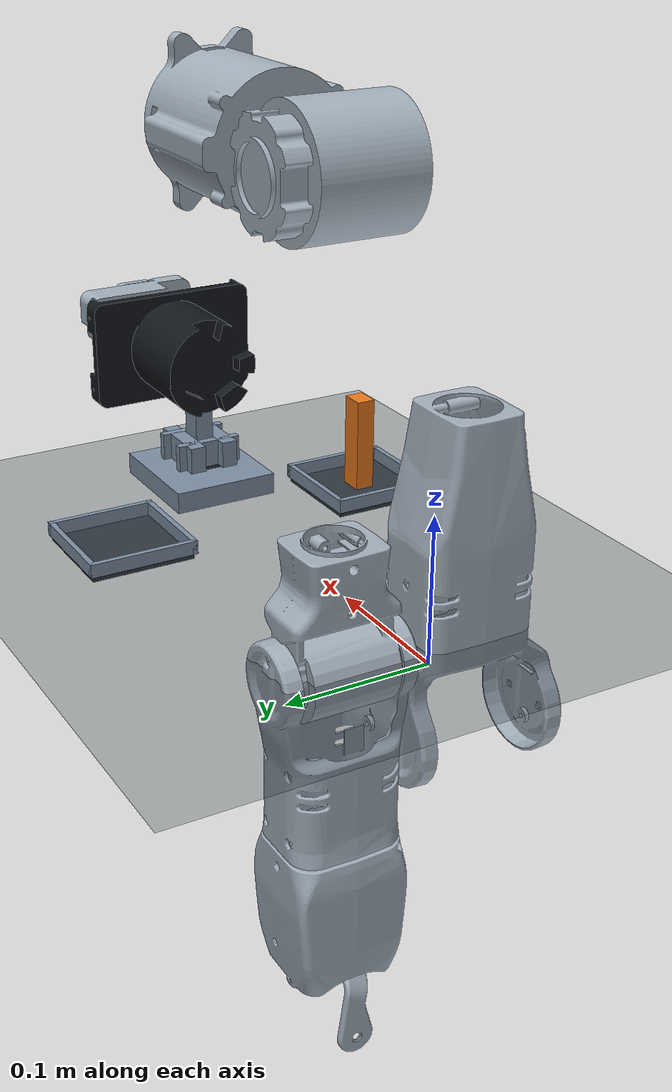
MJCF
<mujoco model="YAM two-stock machine tending with powered contact vise">
  <compiler angle="radian" />
  <asset>
    <mesh name="base" content_type="model/stl" file="../../assets/robots/yam/v1/assets/base.stl" />
    <mesh name="gripper" content_type="model/stl" file="../../assets/robots/yam/v1/assets/gripper.stl" />
    <mesh name="link1" content_type="model/stl" file="../../assets/robots/yam/v1/assets/link1.stl" />
    <mesh name="link2" content_type="model/stl" file="../../assets/robots/yam/v1/assets/link2.stl" />
    <mesh name="link3" content_type="model/stl" file="../../assets/robots/yam/v1/assets/link3.stl" />
    <mesh name="link4" content_type="model/stl" file="../../assets/robots/yam/v1/assets/link4.stl" />
    <mesh name="link5" content_type="model/stl" file="../../assets/robots/yam/v1/assets/link5.stl" />
    <mesh name="tip_left" content_type="model/stl" file="../../assets/robots/yam/v1/assets/tip_left.stl" />
    <mesh name="tip_right" content_type="model/stl" file="../../assets/robots/yam/v1/assets/tip_right.stl" />
    <mesh name="finger_left_0" file="../../assets/robots/yam/collision/tip_left_00.stl" />
    <mesh name="finger_left_1" file="../../assets/robots/yam/collision/tip_left_01.stl" />
    <mesh name="finger_left_2" file="../../assets/robots/yam/collision/tip_left_02.stl" />
    <mesh name="finger_left_3" file="../../assets/robots/yam/collision/tip_left_03.stl" />
    <mesh name="finger_left_4" file="../../assets/robots/yam/collision/tip_left_04.stl" />
    <mesh name="finger_left_5" file="../../assets/robots/yam/collision/tip_left_05.stl" />
    <mesh name="finger_left_6" file="../../assets/robots/yam/collision/tip_left_06.stl" />
    <mesh name="finger_left_7" file="../../assets/robots/yam/collision/tip_left_07.stl" />
    <mesh name="finger_left_8" file="../../assets/robots/yam/collision/tip_left_08.stl" />
    <mesh name="finger_left_9" file="../../assets/robots/yam/collision/tip_left_09.stl" />
    <mesh name="finger_left_10" file="../../assets/robots/yam/collision/tip_left_10.stl" />
    <mesh name="finger_left_11" file="../../assets/robots/yam/collision/tip_left_11.stl" />
    <mesh name="finger_left_12" file="../../assets/robots/yam/collision/tip_left_12.stl" />
    <mesh name="finger_left_13" file="../../assets/robots/yam/collision/tip_left_13.stl" />
    <mesh name="finger_left_14" file="../../assets/robots/yam/collision/tip_left_14.stl" />
    <mesh name="finger_left_15" file="../../assets/robots/yam/collision/tip_left_15.stl" />
    <mesh name="finger_left_16" file="../../assets/robots/yam/collision/tip_left_16.stl" />
    <mesh name="finger_left_17" file="../../assets/robots/yam/collision/tip_left_17.stl" />
    <mesh name="finger_left_18" file="../../assets/robots/yam/collision/tip_left_18.stl" />
    <mesh name="finger_left_19" file="../../assets/robots/yam/collision/tip_left_19.stl" />
    <mesh name="finger_left_20" file="../../assets/robots/yam/collision/tip_left_20.stl" />
    <mesh name="finger_left_21" file="../../assets/robots/yam/collision/tip_left_21.stl" />
    <mesh name="finger_left_22" file="../../assets/robots/yam/collision/tip_left_22.stl" />
    <mesh name="finger_left_23" file="../../assets/robots/yam/collision/tip_left_23.stl" />
    <mesh name="finger_right_0" file="../../assets/robots/yam/collision/tip_right_00.stl" />
    <mesh name="finger_right_1" file="../../assets/robots/yam/collision/tip_right_01.stl" />
    <mesh name="finger_right_2" file="../../assets/robots/yam/collision/tip_right_02.stl" />
    <mesh name="finger_right_3" file="../../assets/robots/yam/collision/tip_right_03.stl" />
    <mesh name="finger_right_4" file="../../assets/robots/yam/collision/tip_right_04.stl" />
    <mesh name="finger_right_5" file="../../assets/robots/yam/collision/tip_right_05.stl" />
    <mesh name="finger_right_6" file="../../assets/robots/yam/collision/tip_right_06.stl" />
    <mesh name="finger_right_7" file="../../assets/robots/yam/collision/tip_right_07.stl" />
    <mesh name="finger_right_8" file="../../assets/robots/yam/collision/tip_right_08.stl" />
    <mesh name="finger_right_9" file="../../assets/robots/yam/collision/tip_right_09.stl" />
    <mesh name="finger_right_10" file="../../assets/robots/yam/collision/tip_right_10.stl" />
    <mesh name="finger_right_11" file="../../assets/robots/yam/collision/tip_right_11.stl" />
    <mesh name="finger_right_12" file="../../assets/robots/yam/collision/tip_right_12.stl" />
    <mesh name="finger_right_13" file="../../assets/robots/yam/collision/tip_right_13.stl" />
    <mesh name="finger_right_14" file="../../assets/robots/yam/collision/tip_right_14.stl" />
    <mesh name="finger_right_15" file="../../assets/robots/yam/collision/tip_right_15.stl" />
    <mesh name="finger_right_16" file="../../assets/robots/yam/collision/tip_right_16.stl" />
    <mesh name="finger_right_17" file="../../assets/robots/yam/collision/tip_right_17.stl" />
    <mesh name="finger_right_18" file="../../assets/robots/yam/collision/tip_right_18.stl" />
    <mesh name="finger_right_19" file="../../assets/robots/yam/collision/tip_right_19.stl" />
    <mesh name="finger_right_20" file="../../assets/robots/yam/collision/tip_right_20.stl" />
    <mesh name="finger_right_21" file="../../assets/robots/yam/collision/tip_right_21.stl" />
    <mesh name="finger_right_22" file="../../assets/robots/yam/collision/tip_right_22.stl" />
    <mesh name="finger_right_23" file="../../assets/robots/yam/collision/tip_right_23.stl" />
    <texture name="studio_sky" type="skybox" builtin="gradient" rgb1=".72 .79 .86" rgb2=".94 .96 .98" width="512" height="3072" />
    <material name="studio_arm" rgba=".63 .68 .73 1" specular=".65" shininess=".65" reflectance=".03" />
    <material name="studio_dark" rgba=".07 .085 .105 1" specular=".3" shininess=".35" reflectance="0" />
    <material name="studio_socket" rgba=".48 .55 .63 1" specular=".75" shininess=".7" reflectance=".05" />
    <material name="studio_peg" rgba=".92 .47 .10 1" specular=".55" shininess=".6" reflectance=".02" />
    <material name="studio_bench" rgba=".18 .215 .245 1" specular=".2" shininess=".2" reflectance="0" />
  </asset>
  <worldbody>
    <body name="base">
      <inertial pos="-3.83909e-05 2.40069e-05 0.0247678" quat="0.500738 0.500087 -0.499793 0.499381" mass="0.873654" diaginertia="0.00169404 0.00157059 0.000678306" />
      <geom pos="0.0374957 0.0464006 0.187501" quat="-1.29867e-06 -0.707108 -1.29868e-06 0.707105" type="mesh" contype="2" conaffinity="9" group="0" density="0" mesh="base" name="yam_geom_0" material="studio_arm" />
      <body name="link1" pos="-2.49778e-07 0 0.068" quat="-1.29867e-06 -0.707108 -1.29868e-06 0.707105">
        <inertial pos="-0.0233636 -0.00172503 -0.00727828" quat="0.350044 0.317088 -0.649919 0.595424" mass="0.101218" diaginertia="0.000134913 0.000106251 4.71815e-05" />
        <joint name="joint1" range="-2.61799 3.14159" actuatorfrcrange="-10 10" axis="-1 0 0" damping=".15" armature=".015" />
        <geom pos="-0.119501 -0.0464 -0.0374968" quat="1 0 0 0" type="mesh" contype="2" conaffinity="9" group="0" density="0" mesh="link1" name="yam_geom_1" material="studio_arm" />
        <body name="link2" pos="-0.0455 -0.0339 -0.02" quat="1.32679e-06 0 0 -1">
          <inertial pos="0.000134495 -0.0331253 0.129165" quat="1 0.000113256 1.56201e-05 -8.02079e-05" mass="1.46908" diaginertia="0.0146686 0.014599 0.000800088" />
          <joint name="joint2" range="0 3.66519" actuatorfrcrange="-10 10" axis="0 1 0" damping=".15" armature=".015" />
          <geom pos="-0.0740001 -0.08025 -0.0174977" quat="1 0 0 0" type="mesh" contype="2" conaffinity="9" group="0" density="0" mesh="link2" name="yam_geom_2" material="studio_arm" />
          <body name="link3" pos="4.08431e-07 -0.0688 0.264" quat="1.32679e-06 0 0 -1">
            <inertial pos="-0.0556042 -0.0340514 -0.135083" quat="0.990999 0.00518347 0.0472812 0.125137" mass="0.982553" diaginertia="0.00765198 0.0076296 0.000876442" />
            <joint name="joint3" range="0 3.14159" actuatorfrcrange="-10 10" axis="0 1 0" damping=".15" armature=".015" />
            <geom pos="-0.0740003 -0.0813 -0.281499" type="mesh" contype="2" conaffinity="9" group="0" density="0" mesh="link3" name="yam_geom_3" material="studio_arm" />
            <body name="link4" pos="-0.0600003 -0.0688 -0.244999" quat="1 0 0 0">
              <inertial pos="-0.0550959 0.032726 -0.0575534" quat="0.127536 0.44423 0.0147443 0.886666" mass="0.462165" diaginertia="0.000787888 0.00076643 0.00028779" />
              <joint name="joint4" range="-1.69297 1.5708" actuatorfrcrange="-10 10" axis="0 1 0" damping=".15" armature=".015" />
              <geom pos="-0.0140003 -0.0125 -0.0364989" quat="1 0 0 0" type="mesh" contype="2" conaffinity="9" group="0" density="0" mesh="link4" name="yam_geom_4" material="studio_arm" />
              <body name="link5" pos="-0.0405003 0.0338995 -0.0739989" quat="1 0 0 0">
                <inertial pos="0.0375847 -3.55003e-05 -0.000825911" quat="0.661372 -0.253166 -0.247107 0.661387" mass="0.403307" diaginertia="0.000219794 0.000195686 0.000169647" />
                <joint name="joint5" range="-1.5708 1.5708" actuatorfrcrange="-10 10" axis="1 0 0" damping=".15" armature=".015" />
                <geom pos="0.0265 -0.0463995 0.0375" quat="1 0 0 0" type="mesh" contype="2" conaffinity="9" group="0" density="0" mesh="link5" name="yam_geom_5" material="studio_arm" />
                <body name="gripper" pos="0.0404996 2.39858e-07 -0.0356" quat="1 0 0 0">
                  <inertial pos="-3.57064e-05 0.000249371 -0.0293133" quat="0.667981 0.744113 -0.0043308 0.00882784" mass="0.553219" diaginertia="0.000409687 0.000369758 0.000324415" />
                  <joint name="joint6" range="-2.0944 2.0944" actuatorfrcrange="-10 10" axis="0 0 -1" damping=".15" armature=".015" />
                  <geom pos="-0.014 -0.0463995 0.0731" quat="1 0 0 0" type="mesh" contype="2" conaffinity="9" group="0" density="0" mesh="gripper" name="yam_geom_6" material="studio_dark" />
                  <body name="tip_left" pos="-0.0239931 0.0445119 -0.0566829" quat="1 0 0 0">
                    <inertial pos="0.014584 -0.042586 -0.0228318" quat="0.80517 -0.425818 -0.124987 0.393393" mass="0.069657" diaginertia="6.18569e-05 5.94605e-05 2.79862e-05" />
                    <joint name="joint7" type="slide" range="-0.04695 0" actuatorfrcrange="-30 30" axis="0 1 0" damping="2" armature=".002" />
                    <geom pos="0.00999321 -0.0914614 0.129783" type="mesh" contype="0" conaffinity="0" group="0" density="0" mesh="tip_left" name="yam_geom_7" material="studio_arm" />
                    <geom pos="0.00999321 -0.0914614 0.129783" type="mesh" contype="4" conaffinity="9" group="3" density="0" mesh="finger_left_0" name="finger_left_0" friction="1.2 .005 .0001" material="studio_dark" />
                    <geom pos="0.00999321 -0.0914614 0.129783" type="mesh" contype="4" conaffinity="9" group="3" density="0" mesh="finger_left_1" name="finger_left_1" friction="1.2 .005 .0001" material="studio_dark" />
                    <geom pos="0.00999321 -0.0914614 0.129783" type="mesh" contype="4" conaffinity="9" group="3" density="0" mesh="finger_left_2" name="finger_left_2" friction="1.2 .005 .0001" material="studio_dark" />
                    <geom pos="0.00999321 -0.0914614 0.129783" type="mesh" contype="4" conaffinity="9" group="3" density="0" mesh="finger_left_3" name="finger_left_3" friction="1.2 .005 .0001" material="studio_dark" />
                    <geom pos="0.00999321 -0.0914614 0.129783" type="mesh" contype="4" conaffinity="9" group="3" density="0" mesh="finger_left_4" name="finger_left_4" friction="1.2 .005 .0001" material="studio_dark" />
                    <geom pos="0.00999321 -0.0914614 0.129783" type="mesh" contype="4" conaffinity="9" group="3" density="0" mesh="finger_left_5" name="finger_left_5" friction="1.2 .005 .0001" material="studio_dark" />
                    <geom pos="0.00999321 -0.0914614 0.129783" type="mesh" contype="4" conaffinity="9" group="3" density="0" mesh="finger_left_6" name="finger_left_6" friction="1.2 .005 .0001" material="studio_dark" />
                    <geom pos="0.00999321 -0.0914614 0.129783" type="mesh" contype="4" conaffinity="9" group="3" density="0" mesh="finger_left_7" name="finger_left_7" friction="1.2 .005 .0001" material="studio_dark" />
                    <geom pos="0.00999321 -0.0914614 0.129783" type="mesh" contype="4" conaffinity="9" group="3" density="0" mesh="finger_left_8" name="finger_left_8" friction="1.2 .005 .0001" material="studio_dark" />
                    <geom pos="0.00999321 -0.0914614 0.129783" type="mesh" contype="4" conaffinity="9" group="3" density="0" mesh="finger_left_9" name="finger_left_9" friction="1.2 .005 .0001" material="studio_dark" />
                    <geom pos="0.00999321 -0.0914614 0.129783" type="mesh" contype="4" conaffinity="9" group="3" density="0" mesh="finger_left_10" name="finger_left_10" friction="1.2 .005 .0001" material="studio_dark" />
                    <geom pos="0.00999321 -0.0914614 0.129783" type="mesh" contype="4" conaffinity="9" group="3" density="0" mesh="finger_left_11" name="finger_left_11" friction="1.2 .005 .0001" material="studio_dark" />
                    <geom pos="0.00999321 -0.0914614 0.129783" type="mesh" contype="4" conaffinity="9" group="3" density="0" mesh="finger_left_12" name="finger_left_12" friction="1.2 .005 .0001" material="studio_dark" />
                    <geom pos="0.00999321 -0.0914614 0.129783" type="mesh" contype="4" conaffinity="9" group="3" density="0" mesh="finger_left_13" name="finger_left_13" friction="1.2 .005 .0001" material="studio_dark" />
                    <geom pos="0.00999321 -0.0914614 0.129783" type="mesh" contype="4" conaffinity="9" group="3" density="0" mesh="finger_left_14" name="finger_left_14" friction="1.2 .005 .0001" material="studio_dark" />
                    <geom pos="0.00999321 -0.0914614 0.129783" type="mesh" contype="4" conaffinity="9" group="3" density="0" mesh="finger_left_15" name="finger_left_15" friction="1.2 .005 .0001" material="studio_dark" />
                    <geom pos="0.00999321 -0.0914614 0.129783" type="mesh" contype="4" conaffinity="9" group="3" density="0" mesh="finger_left_16" name="finger_left_16" friction="1.2 .005 .0001" material="studio_dark" />
                    <geom pos="0.00999321 -0.0914614 0.129783" type="mesh" contype="4" conaffinity="9" group="3" density="0" mesh="finger_left_17" name="finger_left_17" friction="1.2 .005 .0001" material="studio_dark" />
                    <geom pos="0.00999321 -0.0914614 0.129783" type="mesh" contype="4" conaffinity="9" group="3" density="0" mesh="finger_left_18" name="finger_left_18" friction="1.2 .005 .0001" material="studio_dark" />
                    <geom pos="0.00999321 -0.0914614 0.129783" type="mesh" contype="4" conaffinity="9" group="3" density="0" mesh="finger_left_19" name="finger_left_19" friction="1.2 .005 .0001" material="studio_dark" />
                    <geom pos="0.00999321 -0.0914614 0.129783" type="mesh" contype="4" conaffinity="9" group="3" density="0" mesh="finger_left_20" name="finger_left_20" friction="1.2 .005 .0001" material="studio_dark" />
                    <geom pos="0.00999321 -0.0914614 0.129783" type="mesh" contype="4" conaffinity="9" group="3" density="0" mesh="finger_left_21" name="finger_left_21" friction="1.2 .005 .0001" material="studio_dark" />
                    <geom pos="0.00999321 -0.0914614 0.129783" type="mesh" contype="4" conaffinity="9" group="3" density="0" mesh="finger_left_22" name="finger_left_22" friction="1.2 .005 .0001" material="studio_dark" />
                    <geom pos="0.00999321 -0.0914614 0.129783" type="mesh" contype="4" conaffinity="9" group="3" density="0" mesh="finger_left_23" name="finger_left_23" friction="1.2 .005 .0001" material="studio_dark" />
                  </body>
                  <body name="tip_right" pos="0.0239931 -0.0445119 -0.0566829" quat="1 0 0 0">
                    <inertial pos="-0.014584 0.042586 -0.0228318" quat="0.80517 0.425818 0.124987 0.393393" mass="0.069657" diaginertia="6.18569e-05 5.94605e-05 2.79862e-05" />
                    <joint name="joint8" type="slide" range="-0.04695 0" actuatorfrcrange="-30 30" axis="0 -1 0" damping="2" armature=".002" />
                    <geom pos="-0.0379932 -0.00133753 0.129783" quat="1 0 0 0" type="mesh" contype="0" conaffinity="0" group="0" density="0" mesh="tip_right" name="yam_geom_8" material="studio_arm" />
                    <geom pos="-0.0379932 -0.00133753 0.129783" quat="1 0 0 0" type="mesh" contype="4" conaffinity="9" group="3" density="0" mesh="finger_right_0" name="finger_right_0" friction="1.2 .005 .0001" material="studio_dark" />
                    <geom pos="-0.0379932 -0.00133753 0.129783" quat="1 0 0 0" type="mesh" contype="4" conaffinity="9" group="3" density="0" mesh="finger_right_1" name="finger_right_1" friction="1.2 .005 .0001" material="studio_dark" />
                    <geom pos="-0.0379932 -0.00133753 0.129783" quat="1 0 0 0" type="mesh" contype="4" conaffinity="9" group="3" density="0" mesh="finger_right_2" name="finger_right_2" friction="1.2 .005 .0001" material="studio_dark" />
                    <geom pos="-0.0379932 -0.00133753 0.129783" quat="1 0 0 0" type="mesh" contype="4" conaffinity="9" group="3" density="0" mesh="finger_right_3" name="finger_right_3" friction="1.2 .005 .0001" material="studio_dark" />
                    <geom pos="-0.0379932 -0.00133753 0.129783" quat="1 0 0 0" type="mesh" contype="4" conaffinity="9" group="3" density="0" mesh="finger_right_4" name="finger_right_4" friction="1.2 .005 .0001" material="studio_dark" />
                    <geom pos="-0.0379932 -0.00133753 0.129783" quat="1 0 0 0" type="mesh" contype="4" conaffinity="9" group="3" density="0" mesh="finger_right_5" name="finger_right_5" friction="1.2 .005 .0001" material="studio_dark" />
                    <geom pos="-0.0379932 -0.00133753 0.129783" quat="1 0 0 0" type="mesh" contype="4" conaffinity="9" group="3" density="0" mesh="finger_right_6" name="finger_right_6" friction="1.2 .005 .0001" material="studio_dark" />
                    <geom pos="-0.0379932 -0.00133753 0.129783" quat="1 0 0 0" type="mesh" contype="4" conaffinity="9" group="3" density="0" mesh="finger_right_7" name="finger_right_7" friction="1.2 .005 .0001" material="studio_dark" />
                    <geom pos="-0.0379932 -0.00133753 0.129783" quat="1 0 0 0" type="mesh" contype="4" conaffinity="9" group="3" density="0" mesh="finger_right_8" name="finger_right_8" friction="1.2 .005 .0001" material="studio_dark" />
                    <geom pos="-0.0379932 -0.00133753 0.129783" quat="1 0 0 0" type="mesh" contype="4" conaffinity="9" group="3" density="0" mesh="finger_right_9" name="finger_right_9" friction="1.2 .005 .0001" material="studio_dark" />
                    <geom pos="-0.0379932 -0.00133753 0.129783" quat="1 0 0 0" type="mesh" contype="4" conaffinity="9" group="3" density="0" mesh="finger_right_10" name="finger_right_10" friction="1.2 .005 .0001" material="studio_dark" />
                    <geom pos="-0.0379932 -0.00133753 0.129783" quat="1 0 0 0" type="mesh" contype="4" conaffinity="9" group="3" density="0" mesh="finger_right_11" name="finger_right_11" friction="1.2 .005 .0001" material="studio_dark" />
                    <geom pos="-0.0379932 -0.00133753 0.129783" quat="1 0 0 0" type="mesh" contype="4" conaffinity="9" group="3" density="0" mesh="finger_right_12" name="finger_right_12" friction="1.2 .005 .0001" material="studio_dark" />
                    <geom pos="-0.0379932 -0.00133753 0.129783" quat="1 0 0 0" type="mesh" contype="4" conaffinity="9" group="3" density="0" mesh="finger_right_13" name="finger_right_13" friction="1.2 .005 .0001" material="studio_dark" />
                    <geom pos="-0.0379932 -0.00133753 0.129783" quat="1 0 0 0" type="mesh" contype="4" conaffinity="9" group="3" density="0" mesh="finger_right_14" name="finger_right_14" friction="1.2 .005 .0001" material="studio_dark" />
                    <geom pos="-0.0379932 -0.00133753 0.129783" quat="1 0 0 0" type="mesh" contype="4" conaffinity="9" group="3" density="0" mesh="finger_right_15" name="finger_right_15" friction="1.2 .005 .0001" material="studio_dark" />
                    <geom pos="-0.0379932 -0.00133753 0.129783" quat="1 0 0 0" type="mesh" contype="4" conaffinity="9" group="3" density="0" mesh="finger_right_16" name="finger_right_16" friction="1.2 .005 .0001" material="studio_dark" />
                    <geom pos="-0.0379932 -0.00133753 0.129783" quat="1 0 0 0" type="mesh" contype="4" conaffinity="9" group="3" density="0" mesh="finger_right_17" name="finger_right_17" friction="1.2 .005 .0001" material="studio_dark" />
                    <geom pos="-0.0379932 -0.00133753 0.129783" quat="1 0 0 0" type="mesh" contype="4" conaffinity="9" group="3" density="0" mesh="finger_right_18" name="finger_right_18" friction="1.2 .005 .0001" material="studio_dark" />
                    <geom pos="-0.0379932 -0.00133753 0.129783" quat="1 0 0 0" type="mesh" contype="4" conaffinity="9" group="3" density="0" mesh="finger_right_19" name="finger_right_19" friction="1.2 .005 .0001" material="studio_dark" />
                    <geom pos="-0.0379932 -0.00133753 0.129783" quat="1 0 0 0" type="mesh" contype="4" conaffinity="9" group="3" density="0" mesh="finger_right_20" name="finger_right_20" friction="1.2 .005 .0001" material="studio_dark" />
                    <geom pos="-0.0379932 -0.00133753 0.129783" quat="1 0 0 0" type="mesh" contype="4" conaffinity="9" group="3" density="0" mesh="finger_right_21" name="finger_right_21" friction="1.2 .005 .0001" material="studio_dark" />
                    <geom pos="-0.0379932 -0.00133753 0.129783" quat="1 0 0 0" type="mesh" contype="4" conaffinity="9" group="3" density="0" mesh="finger_right_22" name="finger_right_22" friction="1.2 .005 .0001" material="studio_dark" />
                    <geom pos="-0.0379932 -0.00133753 0.129783" quat="1 0 0 0" type="mesh" contype="4" conaffinity="9" group="3" density="0" mesh="finger_right_23" name="finger_right_23" friction="1.2 .005 .0001" material="studio_dark" />
                  </body>
                  <site name="tool_tip" pos="0 0 -.13" size=".003" rgba="1 .2 .1 0" />
                </body>
              </body>
            </body>
          </body>
        </body>
      </body>
    </body>
    <geom name="bench" type="plane" size=".7 .7 .02" contype="1" conaffinity="14" material="studio_bench" />
    <light name="studio_key" pos=".2 -.6 1.4" dir="0 .35 -1" diffuse=".8 .78 .73" specular=".8 .8 .8" castshadow="true" directional="true" />
    <light name="studio_fill" pos="-.4 .4 .8" dir=".5 -.3 -.8" diffuse=".36 .43 .52" specular=".25 .3 .4" castshadow="false" directional="true" />
    <light name="studio_rim" pos=".8 .5 1" dir="-.4 -.4 -1" diffuse=".42 .45 .5" specular=".6 .6 .6" castshadow="false" directional="true" />
    <camera name="overview" pos="0.95 -1.05 0.82" xyaxes="0.8210645514674284 0.5708353548297359 -0.0 -0.2522652932793071 0.3628473396483184 0.8970529694041725" fovy="38" />
    <camera name="insertion" pos="0.54 -0.3 0.28" xyaxes="0.8064049958557055 0.5913636636275175 -0.0 -0.31582156599663325 0.43066577181359067 0.8454488343120701" fovy="38" />
    <body name="raw_tray" pos=".25 -.10 0">
      <geom name="raw_tray_floor" type="box" pos="0 0 .002" size=".038 .038 .002" contype="1" conaffinity="14" material="studio_bench" />
      <geom name="raw_tray_wall0_-1" type="box" pos="-0.038 0.0 0.009" size="0.002 0.04 0.005" contype="1" conaffinity="14" material="studio_socket" />
      <geom name="raw_tray_wall0_1" type="box" pos="0.038 0.0 0.009" size="0.002 0.04 0.005" contype="1" conaffinity="14" material="studio_socket" />
      <geom name="raw_tray_wall1_-1" type="box" pos="0.0 -0.038 0.009" size="0.04 0.002 0.005" contype="1" conaffinity="14" material="studio_socket" />
      <geom name="raw_tray_wall1_1" type="box" pos="0.0 0.038 0.009" size="0.04 0.002 0.005" contype="1" conaffinity="14" material="studio_socket" />
    </body>
    <body name="output_tray" pos=".24 .10 0">
      <geom name="output_tray_floor" type="box" pos="0 0 .002" size=".038 .038 .002" contype="1" conaffinity="14" material="studio_bench" />
      <geom name="output_tray_wall0_-1" type="box" pos="-0.038 0.0 0.009" size="0.002 0.04 0.005" contype="1" conaffinity="14" material="studio_socket" />
      <geom name="output_tray_wall0_1" type="box" pos="0.038 0.0 0.009" size="0.002 0.04 0.005" contype="1" conaffinity="14" material="studio_socket" />
      <geom name="output_tray_wall1_-1" type="box" pos="0.0 -0.038 0.009" size="0.04 0.002 0.005" contype="1" conaffinity="14" material="studio_socket" />
      <geom name="output_tray_wall1_1" type="box" pos="0.0 0.038 0.009" size="0.04 0.002 0.005" contype="1" conaffinity="14" material="studio_socket" />
    </body>
    <body name="vise" pos=".32 0 0">
      <geom name="vise_base" type="box" pos="0 0 .008" size=".045 .040 .008" contype="1" conaffinity="14" material="studio_socket" />
      <geom name="vise_seat" type="box" pos="0 0 .018" size=".014 .011 .002" contype="1" conaffinity="14" material="studio_bench" />
      <geom name="vise_fixed_jaw" type="box" pos="0 -.013 .030" size=".025 .006 .010" contype="1" conaffinity="14" material="studio_socket" />
      <geom name="vise_endstop-1" type="box" pos="-0.014 0 .030" size=".003 .025 .010" contype="1" conaffinity="14" material="studio_socket" />
      <geom name="vise_endstop1" type="box" pos="0.014 0 .030" size=".003 .025 .010" contype="1" conaffinity="14" material="studio_socket" />
      <body name="vise_slider" pos="0 .013 .030">
        <joint name="vise_joint" type="slide" axis="0 1 0" range="-.002 .026" damping="2" armature=".005" />
        <inertial pos="0 0 0" mass=".12" diaginertia=".00003 .00003 .00003" />
        <geom name="vise_moving_jaw" type="box" pos="0 0 0" size=".025 .006 .010" contype="1" conaffinity="14" material="studio_socket" />
      </body>
    </body>
    <body name="free_peg" pos=".25 -.10 .0041" quat="0 0 0 1">
      <freejoint name="peg_free" />
      <inertial pos="0 0 .035" mass=".04" diaginertia=".00001699 .00001741 .000001733" />
      <geom name="peg" type="box" pos="0 0 .035" size=".009 .007 .035" contype="8" conaffinity="15" friction="1.2 .005 .0001" material="studio_peg" />
      <site name="peg_tip" pos="0 0 0" size=".002" rgba="1 0 0 0" />
    </body>
    <body name="finished_stock" pos=".32 0 .0201" quat="0 0 0 1">
      <freejoint name="finished_free" />
      <inertial pos="0 0 .035" mass=".04" diaginertia=".00001699 .00001741 .000001733" />
      <geom name="finished_part" type="box" pos="0 0 .035" size=".009 .007 .035" contype="8" conaffinity="15" friction="1.2 .005 .0001" material="studio_socket" />
      <site name="finished_tip" pos="0 0 0" size=".002" rgba="1 0 0 0" />
    </body>
  </worldbody>
  <option timestep=".002" integrator="implicitfast" gravity="0 0 -9.81" iterations="150" cone="elliptic" noslip_iterations="5" />
  <default>
    <geom friction=".8 .005 .0001" solref=".005 1" solimp=".95 .99 .001" condim="4" />
  </default>
  <equality>
    <joint name="gripper_mimic" joint1="joint8" joint2="joint7" polycoef="0 1 0 0 0" solref=".002 1" />
  </equality>
  <actuator>
    <motor name="motor1" joint="joint1" ctrlrange="-10 10" ctrllimited="true" />
    <motor name="motor2" joint="joint2" ctrlrange="-10 10" ctrllimited="true" />
    <motor name="motor3" joint="joint3" ctrlrange="-10 10" ctrllimited="true" />
    <motor name="motor4" joint="joint4" ctrlrange="-10 10" ctrllimited="true" />
    <motor name="motor5" joint="joint5" ctrlrange="-10 10" ctrllimited="true" />
    <motor name="motor6" joint="joint6" ctrlrange="-10 10" ctrllimited="true" />
    <motor name="grip" joint="joint7" ctrlrange="-30 30" ctrllimited="true" />
    <motor name="vise_motor" joint="vise_joint" ctrlrange="-20 20" ctrllimited="true" />
  </actuator>
  <visual>
    <global offwidth="1440" offheight="1080" />
    <quality shadowsize="4096" offsamples="8" />
    <headlight ambient=".28 .28 .3" diffuse=".35 .35 .35" specular=".15 .15 .15" />
    <rgba haze=".83 .87 .9 1" />
  </visual>
</mujoco>
